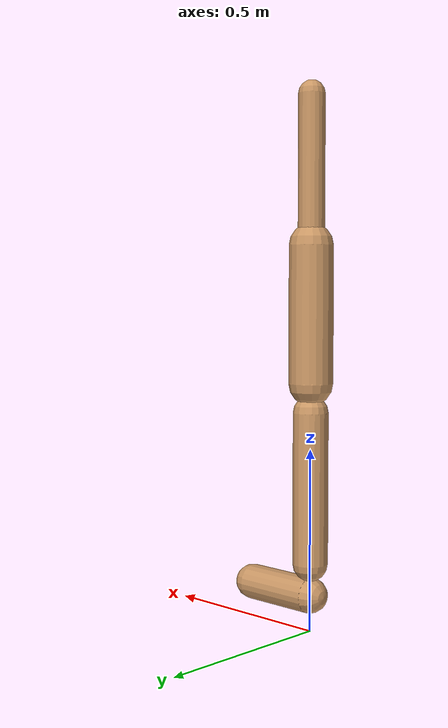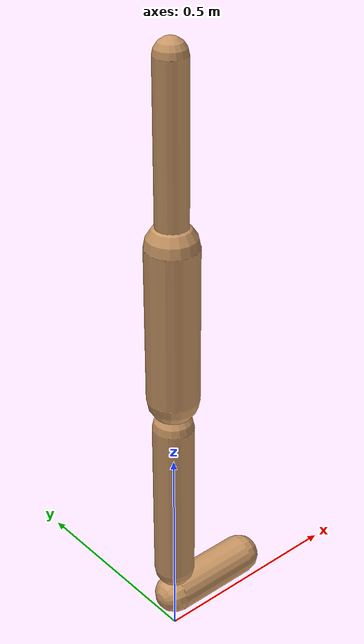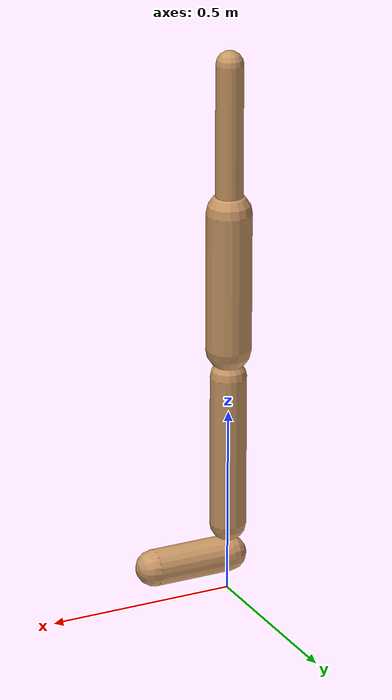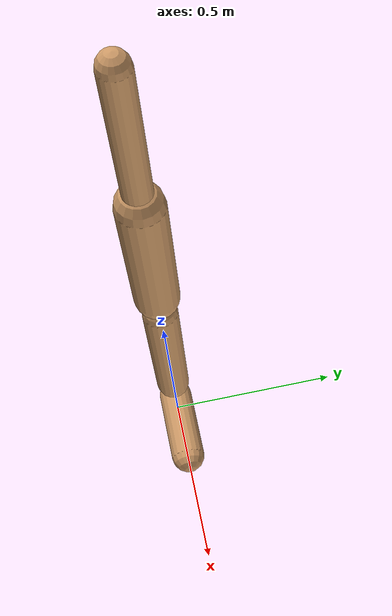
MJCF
<mujoco model="walker2d">
  <compiler angle="degree" coordinate="global" inertiafromgeom="true" />
  <default>
    <joint armature="0.01" damping=".1" limited="true" />
    <geom conaffinity="0" condim="3" contype="1" density="1000" friction="0.8 .1 .1" rgba="0.8 0.6 .4 1" />
  </default>
  <option integrator="RK4" timestep="0.002" />
  <worldbody>

    <body name="torso" pos="0 0 -0.16639284412905372">
      <joint armature="0" axis="1 0 0" damping="0" limited="false" name="ignorex" pos="0 0 0" stiffness="0" type="slide" />
      <joint armature="0" axis="0 0 1" damping="0" limited="false" name="ignorez" pos="0 0 0" ref="1.25" stiffness="0" type="slide" />
      <joint armature="0" axis="0 1 0" damping="0" limited="false" name="ignorey" pos="0 0 0" stiffness="0" type="hinge" />
      <geom fromto="0 0 1.45 0 0 1.05" name="torso_geom" size="0.03626026304850712" type="capsule" />
      <body name="thigh">
        <joint axis="0 -1 0" name="thigh_joint" pos="0 0 1.05" range="-150 0" type="hinge" />
        <geom fromto="0.0 0.0 1.05 0.0 0.0 0.6788176630084991" name="thigh_geom" size="0.06003385021793113" type="capsule" />
        <body name="leg" pos="0.0 0.0 0.07881766300849913">
          <joint axis="0 -1 0" name="leg_joint" pos="0 0 0.6" range="-150 0" type="hinge" />
          <geom fromto="0.0 0.0 0.6 0.0 0.0 0.1875751811205546" name="leg_geom" size="0.048027080174344906" type="capsule" />
          <body name="foot" pos="0.0 0.0 0.0875751811205546">
            <joint axis="0 -1 0" name="foot_joint" pos="0 0 0.1" range="-45 45" type="hinge" />
            <geom fromto="-0.0 0.0 0.1 0.2134831911013132 0.0 0.1" name="foot_geom" size="0.04854143899646914" type="capsule" />
          </body>
        </body>
      </body>

      <body name="thigh_left">
        <joint axis="0 -1 0" name="thigh_left_joint" pos="0 0 1.05" range="-150 0" type="hinge" />
        <geom fromto="0.0 0.0 1.05 0.0 0.0 0.6788176630084991" name="thigh_left_geom" rgba=".7 .3 .6 1" size="0.06003385021793113" type="capsule" />
        <body name="leg_left" pos="0.0 0.0 0.07881766300849913">
          <joint axis="0 -1 0" name="leg_left_joint" pos="0 0 0.6" range="-150 0" type="hinge" />
          <geom fromto="0.0 0.0 0.6 0.0 0.0 0.1875751811205546" name="leg_left_geom" rgba=".7 .3 .6 1" size="0.048027080174344906" type="capsule" />
          <body name="foot_left" pos="0.0 0.0 0.0875751811205546">
            <joint axis="0 -1 0" name="foot_left_joint" pos="0 0 0.1" range="-45 45" type="hinge" />
            <geom fromto="-0.0 0.0 0.1 0.2134831911013132 0.0 0.1" name="foot_left_geom" rgba=".7 .3 .6 1" size="0.04854143899646914" type="capsule" />
          </body>
        </body>
      </body>
    </body>
  </worldbody>
  <actuator>

    <motor ctrllimited="true" ctrlrange="-1.0 1.0" gear="100" joint="thigh_joint" />
    <motor ctrllimited="true" ctrlrange="-1.0 1.0" gear="100" joint="leg_joint" />
    <motor ctrllimited="true" ctrlrange="-1.0 1.0" gear="100" joint="foot_joint" />
    <motor ctrllimited="true" ctrlrange="-1.0 1.0" gear="100" joint="thigh_left_joint" />
    <motor ctrllimited="true" ctrlrange="-1.0 1.0" gear="100" joint="leg_left_joint" />
    <motor ctrllimited="true" ctrlrange="-1.0 1.0" gear="100" joint="foot_left_joint" />

  </actuator>
</mujoco>
